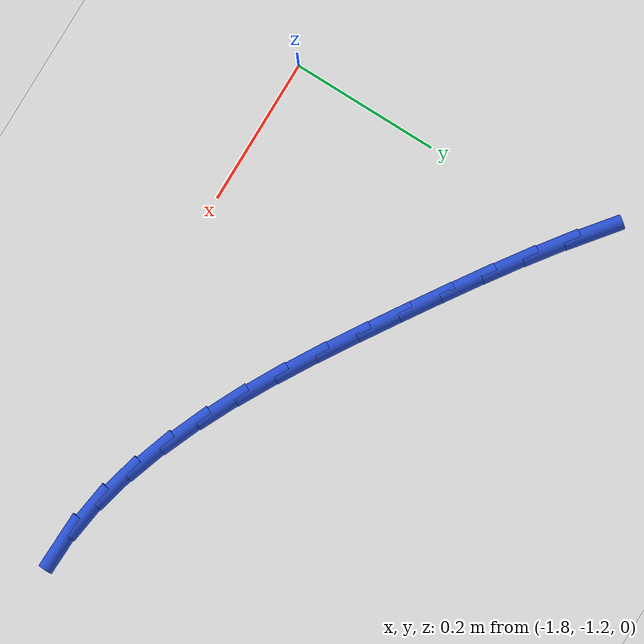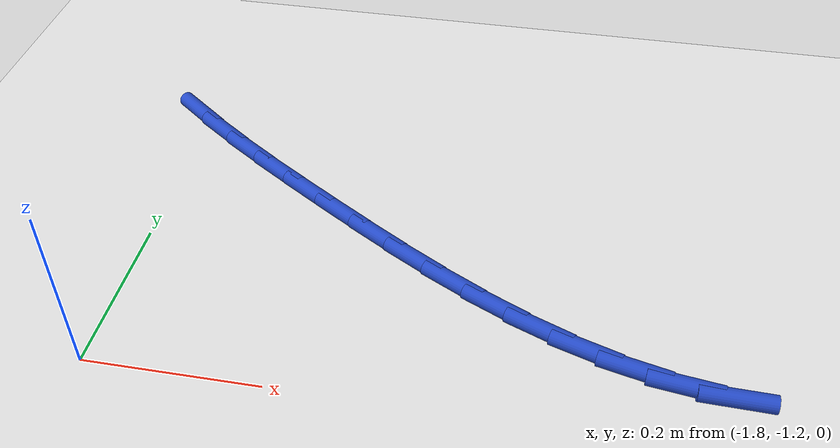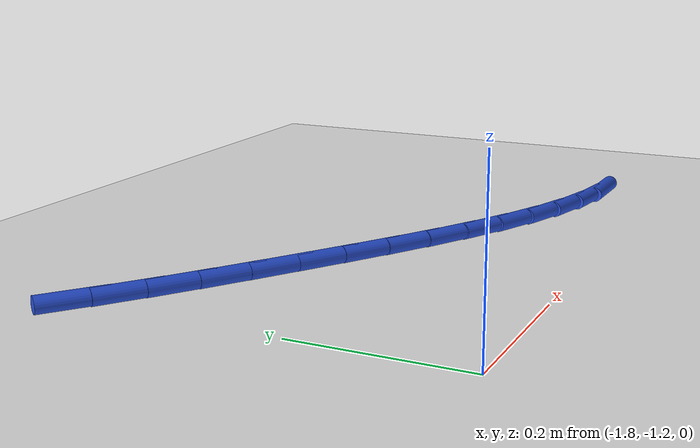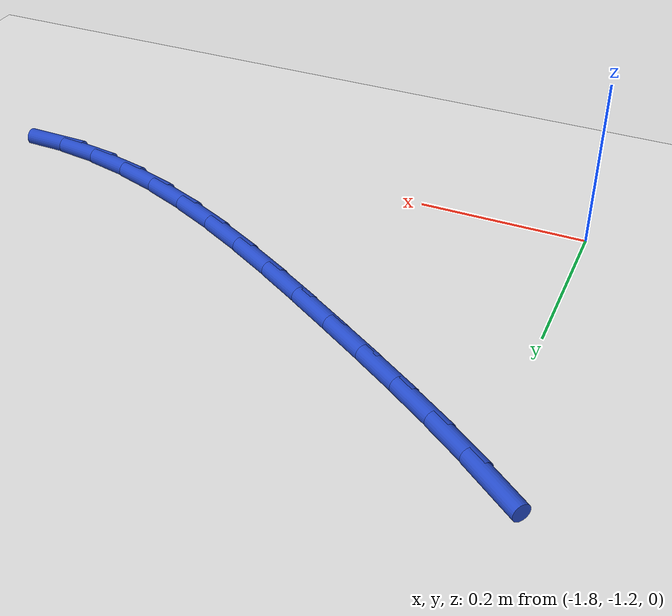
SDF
<sdf version="1.6">
 <world name="default">
  <model name="ground_plane">
   <static>1</static>
   <link name="link">
    <collision name="collision">
     <geometry><plane><normal>0 0 1</normal><size>100 100</size></plane></geometry>
     <surface><friction><ode><mu>100</mu><mu2>50</mu2></ode></friction></surface>
    </collision>
    <visual name="visual">
     <cast_shadows>0</cast_shadows>
     <geometry><plane><normal>0 0 1</normal><size>100 100</size></plane></geometry>
     <material>
      <script><uri>file://media/materials/scripts/gazebo.material</uri><name>Gazebo/WhiteGlow</name></script>
     </material>
    </visual>
   </link>
  </model>
  <model name="line">
   <link name="link_75">
    <pose>-1.8158825013594302 -0.7670767706423577 0.01 0 1.57 -0.6648285524400425</pose>
    <collision name="collision">
     <geometry><cylinder><radius>0.01</radius><length>0.08</length></cylinder></geometry>
    </collision>
    <visual name="visual">
     <material>
      <script><name>Gazebo/Blue</name><uri>file://media/materials/scripts/gazebo.material</uri></script>
     </material>
     <geometry><cylinder><radius>0.01</radius><length>0.08</length></cylinder></geometry>
    </visual>
   </link>
   <link name="link_76">
    <pose>-1.7713095148263605 -0.8020162445591059 0.01 0 1.57 -0.629511985386322</pose>
    <collision name="collision">
     <geometry><cylinder><radius>0.01</radius><length>0.08</length></cylinder></geometry>
    </collision>
    <visual name="visual">
     <material>
      <script><name>Gazebo/Blue</name><uri>file://media/materials/scripts/gazebo.material</uri></script>
     </material>
     <geometry><cylinder><radius>0.01</radius><length>0.08</length></cylinder></geometry>
    </visual>
   </link>
   <link name="link_77">
    <pose>-1.7248531401365805 -0.8358535602723021 0.01 0 1.57 -0.6029337270066351</pose>
    <collision name="collision">
     <geometry><cylinder><radius>0.01</radius><length>0.08</length></cylinder></geometry>
    </collision>
    <visual name="visual">
     <material>
      <script><name>Gazebo/Blue</name><uri>file://media/materials/scripts/gazebo.material</uri></script>
     </material>
     <geometry><cylinder><radius>0.01</radius><length>0.08</length></cylinder></geometry>
    </visual>
   </link>
   <link name="link_78">
    <pose>-1.6769286443346905 -0.8688472905996945 0.01 0 1.57 -0.5845620115405236</pose>
    <collision name="collision">
     <geometry><cylinder><radius>0.01</radius><length>0.08</length></cylinder></geometry>
    </collision>
    <visual name="visual">
     <material>
      <script><name>Gazebo/Blue</name><uri>file://media/materials/scripts/gazebo.material</uri></script>
     </material>
     <geometry><cylinder><radius>0.01</radius><length>0.08</length></cylinder></geometry>
    </visual>
   </link>
   <link name="link_79">
    <pose>-1.6279512944652923 -0.9012560083590297 0.01 0 1.57 -0.5739675740738117</pose>
    <collision name="collision">
     <geometry><cylinder><radius>0.01</radius><length>0.08</length></cylinder></geometry>
    </collision>
    <visual name="visual">
     <material>
      <script><name>Gazebo/Blue</name><uri>file://media/materials/scripts/gazebo.material</uri></script>
     </material>
     <geometry><cylinder><radius>0.01</radius><length>0.08</length></cylinder></geometry>
    </visual>
   </link>
   <link name="link_80">
    <pose>-1.5783355821977136 -0.9333365588016701 0.01 0 1.57 -0.5660665363238789</pose>
    <collision name="collision">
     <geometry><cylinder><radius>0.01</radius><length>0.08</length></cylinder></geometry>
    </collision>
    <visual name="visual">
     <material>
      <script><name>Gazebo/Blue</name><uri>file://media/materials/scripts/gazebo.material</uri></script>
     </material>
     <geometry><cylinder><radius>0.01</radius><length>0.08</length></cylinder></geometry>
    </visual>
   </link>
   <link name="link_81">
    <pose>-1.5283774322381654 -0.9650816153546385 0.01 0 1.57 -0.550696347355227</pose>
    <collision name="collision">
     <geometry><cylinder><radius>0.01</radius><length>0.08</length></cylinder></geometry>
    </collision>
    <visual name="visual">
     <material>
      <script><name>Gazebo/Blue</name><uri>file://media/materials/scripts/gazebo.material</uri></script>
     </material>
     <geometry><cylinder><radius>0.01</radius><length>0.08</length></cylinder></geometry>
    </visual>
   </link>
   <link name="link_82">
    <pose>-1.478127814581945 -0.9959380827825872 0.01 0 1.57 -0.5262561653224355</pose>
    <collision name="collision">
     <geometry><cylinder><radius>0.01</radius><length>0.08</length></cylinder></geometry>
    </collision>
    <visual name="visual">
     <material>
      <script><name>Gazebo/Blue</name><uri>file://media/materials/scripts/gazebo.material</uri></script>
     </material>
     <geometry><cylinder><radius>0.01</radius><length>0.08</length></cylinder></geometry>
    </visual>
   </link>
   <link name="link_83">
    <pose>-1.4276073923338355 -1.025285340914497 0.01 0 1.57 -0.4920985714434289</pose>
    <collision name="collision">
     <geometry><cylinder><radius>0.01</radius><length>0.08</length></cylinder></geometry>
    </collision>
    <visual name="visual">
     <material>
      <script><name>Gazebo/Blue</name><uri>file://media/materials/scripts/gazebo.material</uri></script>
     </material>
     <geometry><cylinder><radius>0.01</radius><length>0.08</length></cylinder></geometry>
    </visual>
   </link>
   <link name="link_84">
    <pose>-1.3768368285986177 -1.0525027695793485 0.01 0 1.57 -0.44731212819901955</pose>
    <collision name="collision">
     <geometry><cylinder><radius>0.01</radius><length>0.08</length></cylinder></geometry>
    </collision>
    <visual name="visual">
     <material>
      <script><name>Gazebo/Blue</name><uri>file://media/materials/scripts/gazebo.material</uri></script>
     </material>
     <geometry><cylinder><radius>0.01</radius><length>0.08</length></cylinder></geometry>
    </visual>
   </link>
   <link name="link_85">
    <pose>-1.3258367864810738 -1.0769697486061225 0.01 0 1.57 -0.3907724839879498</pose>
    <collision name="collision">
     <geometry><cylinder><radius>0.01</radius><length>0.08</length></cylinder></geometry>
    </collision>
    <visual name="visual">
     <material>
      <script><name>Gazebo/Blue</name><uri>file://media/materials/scripts/gazebo.material</uri></script>
     </material>
     <geometry><cylinder><radius>0.01</radius><length>0.08</length></cylinder></geometry>
    </visual>
   </link>
   <link name="link_86">
    <pose>-1.274627929085987 -1.0980656578237984 0.01 0 1.57 -0.3212581189708642</pose>
    <collision name="collision">
     <geometry><cylinder><radius>0.01</radius><length>0.08</length></cylinder></geometry>
    </collision>
    <visual name="visual">
     <material>
      <script><name>Gazebo/Blue</name><uri>file://media/materials/scripts/gazebo.material</uri></script>
     </material>
     <geometry><cylinder><radius>0.01</radius><length>0.08</length></cylinder></geometry>
    </visual>
   </link>
   <link name="link_87">
    <pose>-1.2232309195181388 -1.1151698770613572 0.01 0 1.57 -0.2376788476783602</pose>
    <collision name="collision">
     <geometry><cylinder><radius>0.01</radius><length>0.08</length></cylinder></geometry>
    </collision>
    <visual name="visual">
     <material>
      <script><name>Gazebo/Blue</name><uri>file://media/materials/scripts/gazebo.material</uri></script>
     </material>
     <geometry><cylinder><radius>0.01</radius><length>0.08</length></cylinder></geometry>
    </visual>
   </link>
   <link name="link_88">
    <pose>-1.1716664208823113 -1.1276617861477793 0.01 0 1.57 -0.13946374366320158</pose>
    <collision name="collision">
     <geometry><cylinder><radius>0.01</radius><length>0.08</length></cylinder></geometry>
    </collision>
    <visual name="visual">
     <material>
      <script><name>Gazebo/Blue</name><uri>file://media/materials/scripts/gazebo.material</uri></script>
     </material>
     <geometry><cylinder><radius>0.01</radius><length>0.08</length></cylinder></geometry>
    </visual>
   </link>
   <link name="link_89">
    <pose>-1.1199550962832858 -1.1349207649120452 0.01 0 1.57 -0.027550928750794835</pose>
    <collision name="collision">
     <geometry><cylinder><radius>0.01</radius><length>0.08</length></cylinder></geometry>
    </collision>
    <visual name="visual">
     <material>
      <script><name>Gazebo/Blue</name><uri>file://media/materials/scripts/gazebo.material</uri></script>
     </material>
     <geometry><cylinder><radius>0.01</radius><length>0.08</length></cylinder></geometry>
    </visual>
   </link>
  </model>
 </world>
</sdf>
